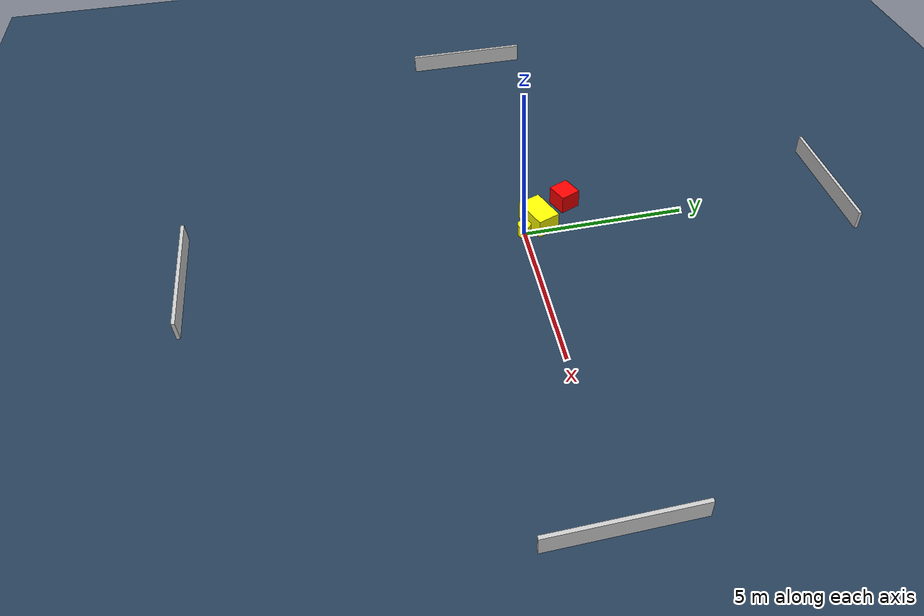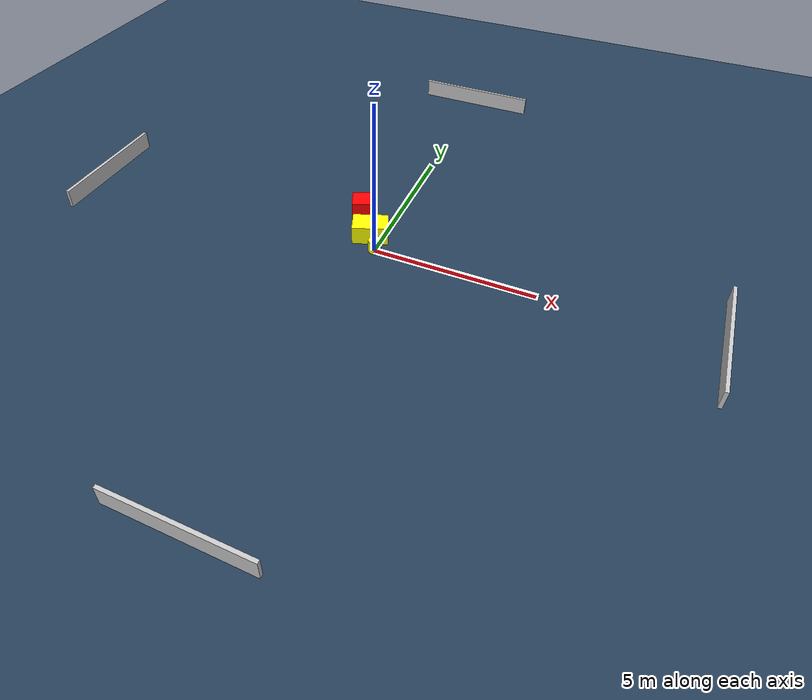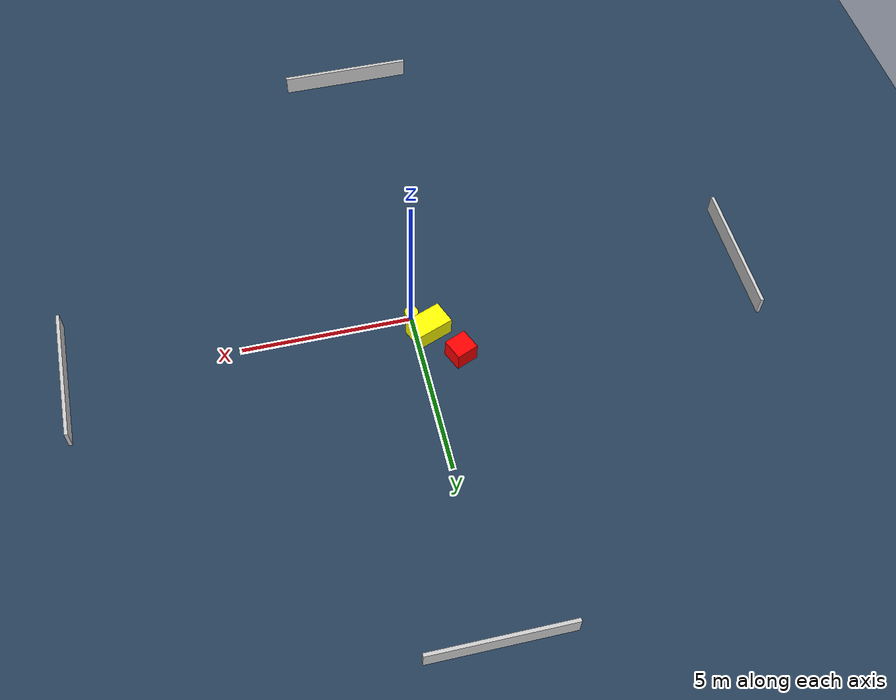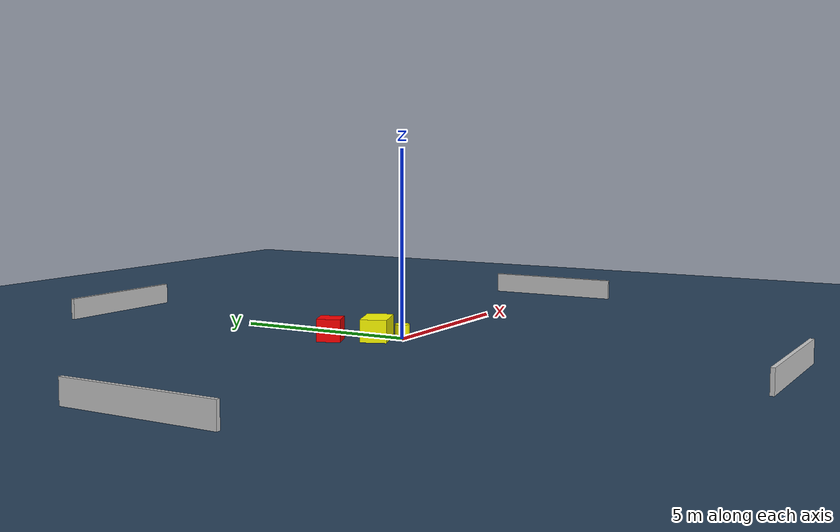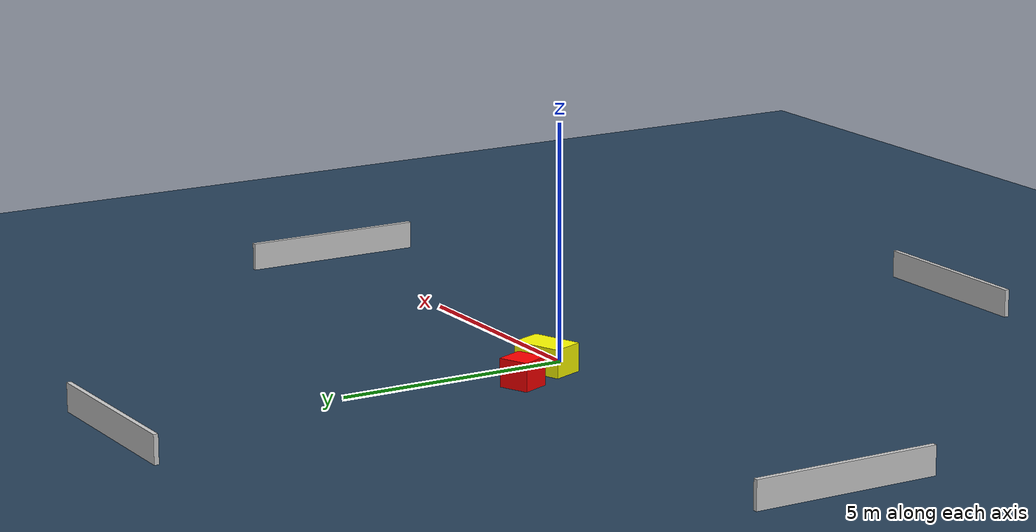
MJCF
<?xml version="1.0" ?>
<mujoco model="generated_environment">
  <option timestep="0.01" integrator="RK4" cone="elliptic"/>
  <default>
    <geom density="1"/>
  </default>
  <asset>
    <texture builtin="gradient" height="3072" name="skybox" rgb1="0.3 0.5 0.7" rgb2="0 0 0" type="skybox" width="512"/>
    <texture builtin="checker" height="300" name="groundplane" rgb1="0.2 0.3 0.4" rgb2="0.1 0.2 0.3" type="2d" width="300"/>
    <material name="groundplane" reflectance="0.2" texrepeat="5 5" texture="groundplane"/>
  </asset>
  <worldbody>
    <light dir="0 0 -1" directional="true" pos="0 0 1.5"/>
    <geom condim="3" friction="0.5 0.005 0.001" material="groundplane" name="floor" pos="0 0 0" size="0 0 0.05" type="plane"/>
    <body name="walls">
      <geom name="wall_1" condim="4" pos="-10.0 0.0 0.3" rgba="0.800000011920929 0.800000011920929 0.800000011920929 1.0" size="0.05 2.0 0.3" type="box"/>
      <geom name="wall_2" condim="4" pos="10.0 0.0 0.3" rgba="0.800000011920929 0.800000011920929 0.800000011920929 1.0" size="0.05 2.0 0.3" type="box"/>
      <geom name="wall_3" condim="4" pos="0.0 -10.0 0.3" rgba="0.800000011920929 0.800000011920929 0.800000011920929 1.0" size="2.0 0.05 0.3" type="box"/>
      <geom name="wall_4" condim="4" pos="0.0 10.0 0.3" rgba="0.800000011920929 0.800000011920929 0.800000011920929 1.0" size="2.0 0.05 0.3" type="box"/>
    </body>
    <body name="robot">
      <joint name="joint_x" type="slide" pos="0 0 0" axis="1 0 0"/>
      <joint name="joint_y" type="slide" pos="0 0 0" axis="0 1 0"/>
      <geom name="robot" type="cylinder" pos="0.0 0.0 0.2" size="0.2 0.2 0.0" mass="5.0" friction="1.0 0.005 0.0001" condim="4" rgba="1.0 1.0 0.0 1.0"/>
    </body>
    <body name="obstacle_1_movable">
      <geom name="obstacle_1_movable" condim="4" pos="-0.38492111620961905 0.5477527785443586 0.3" euler="0 0 111.07187115087902" friction="0.0 0.005 0.001" rgba="1.0 1.0 0.0 1.0" size="0.3556790047245026 0.5542133634661504 0.3" type="box" mass="0.1"/>
      <joint type="free"/>
    </body>
    <body name="obstacle_2_static">
      <geom name="obstacle_2_static" condim="4" pos="-1.0980153089978681 1.539777508234711 0.3" euler="0 0 112.97693040074154" friction="0.0 0.005 0.001" rgba="1.0 0.0 0.0 1.0" size="0.31866400254311555 0.3317651449256924 0.3" type="box"/>
    </body>
  </worldbody>
  <actuator>
    <motor name="actuator_x" joint="joint_x" gear="1" ctrlrange="-1 1"/>
    <motor name="actuator_y" joint="joint_y" gear="1" ctrlrange="-1 1"/>
  </actuator>
</mujoco>
